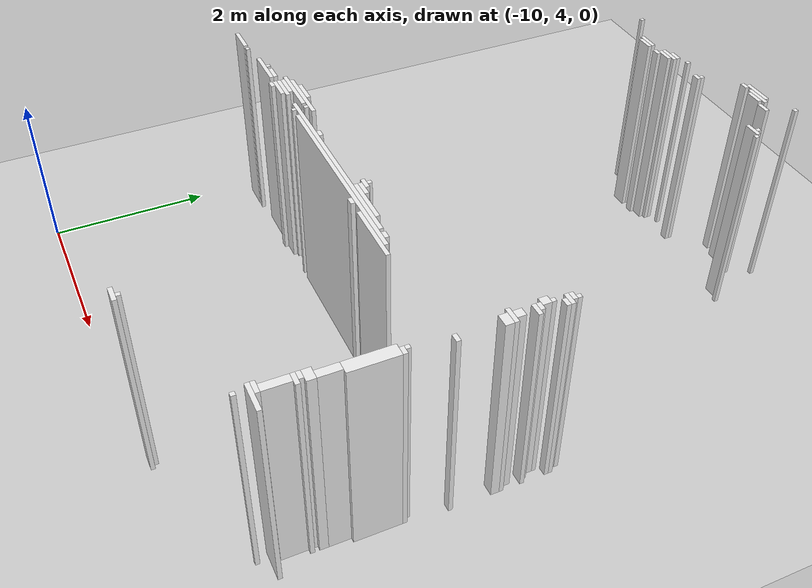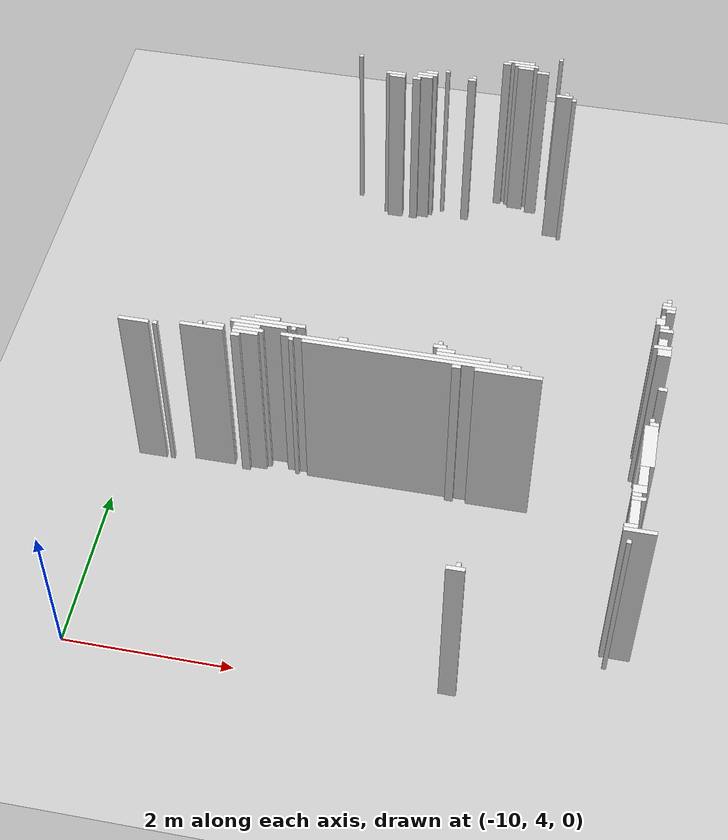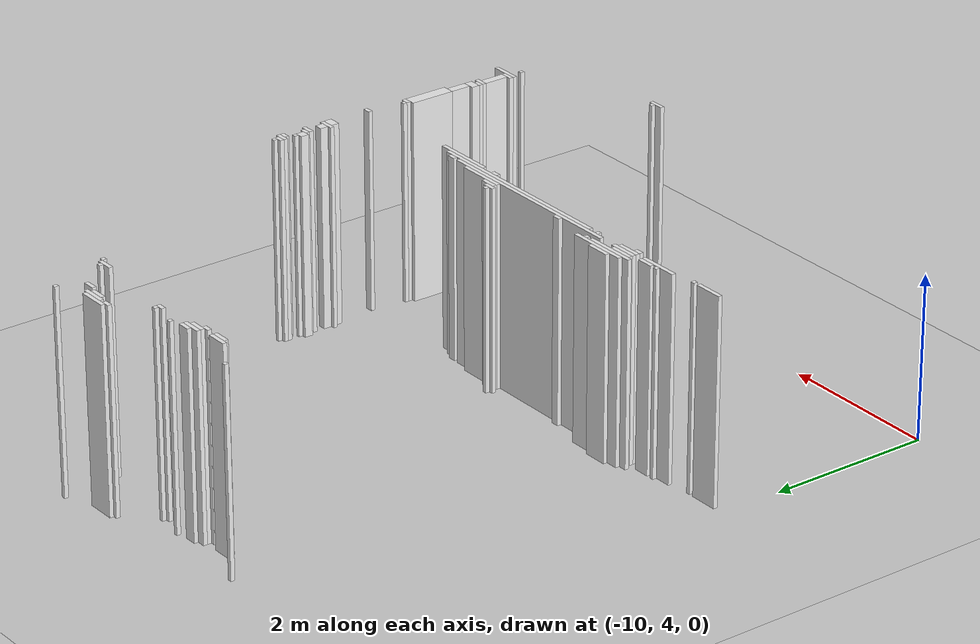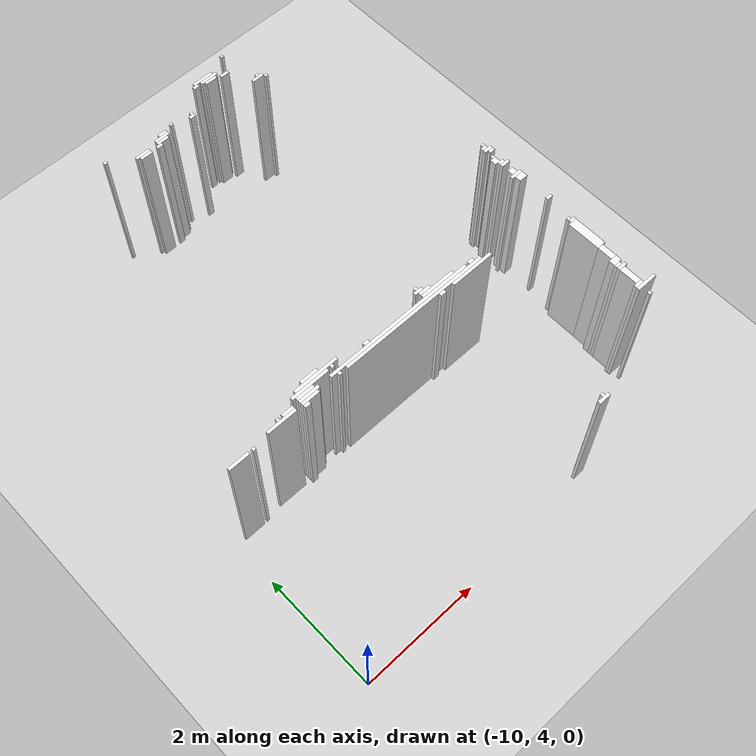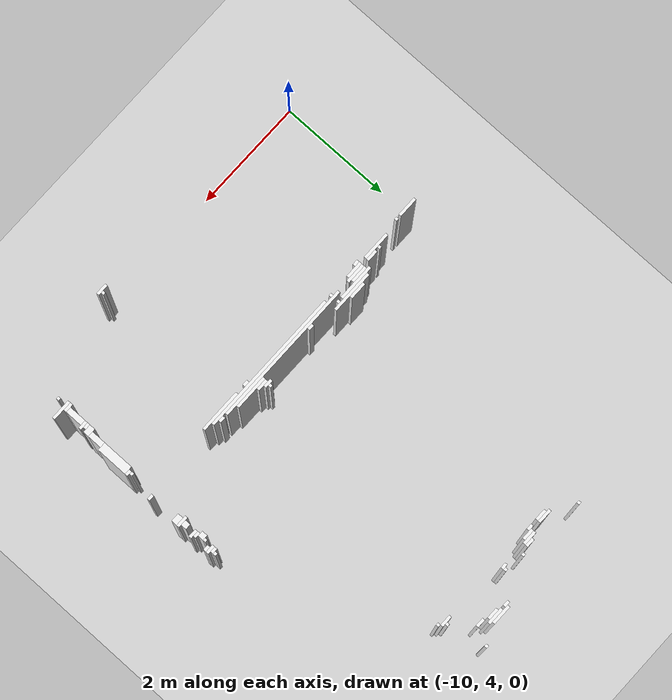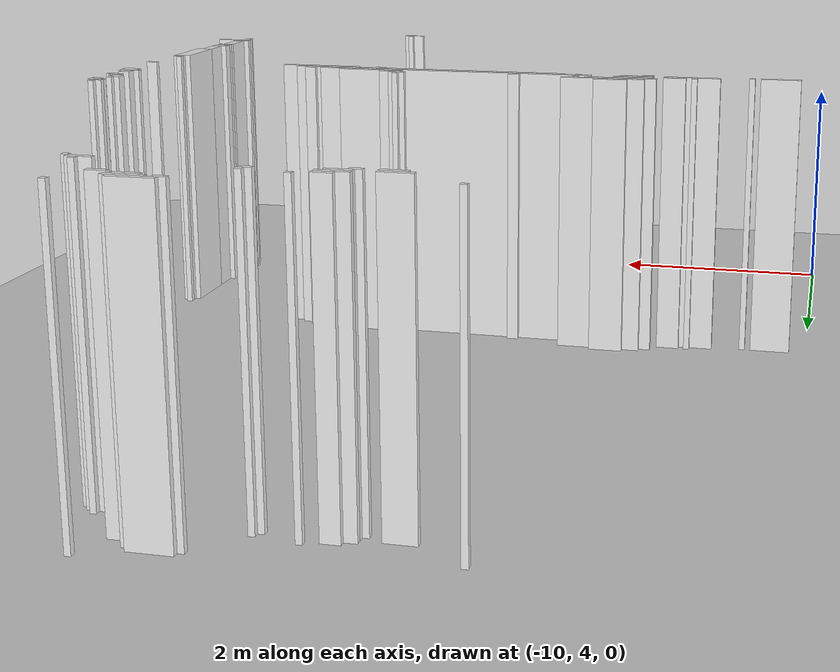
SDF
<sdf version="1.7">
 <world name="occupancy_map_world">
  <model name="ground_plane">
   <static>true</static>
   <link name="link">
    <collision name="collision">
     <geometry><plane><normal>0 0 1</normal><size>25.380000000000003 18.84</size></plane></geometry>
    </collision>
    <visual name="visual">
     <geometry><plane><normal>0 0 1</normal><size>25.380000000000003 18.84</size></plane></geometry>
     <material>
      <script><uri>file://media/materials/scripts/gazebo.material</uri><name>Gazebo/Grey</name></script>
     </material>
    </visual>
   </link>
  </model>
  <model name="wall_0">
   <static>true</static>
   <pose>-5.479000000000001 12.102999999999998 1.25 0 0 0.0</pose>
   <link name="link">
    <collision name="collision"><geometry><box><size>0.05 0.05 2.5</size></box></geometry></collision>
    <visual name="visual">
     <geometry><box><size>0.05 0.05 2.5</size></box></geometry>
     <material>
      <script><uri>file://media/materials/scripts/gazebo.material</uri><name>Gazebo/White</name></script>
     </material>
    </visual>
   </link>
  </model>
  <model name="wall_3">
   <static>true</static>
   <pose>-5.979000000000001 11.953 1.25 0 0 0.0</pose>
   <link name="link">
    <collision name="collision">
     <geometry><box><size>0.35000000000000003 0.05 2.5</size></box></geometry>
    </collision>
    <visual name="visual">
     <geometry><box><size>0.35000000000000003 0.05 2.5</size></box></geometry>
     <material>
      <script><uri>file://media/materials/scripts/gazebo.material</uri><name>Gazebo/White</name></script>
     </material>
    </visual>
   </link>
  </model>
  <model name="wall_4">
   <static>true</static>
   <pose>-6.154 11.902999999999999 1.25 0 0 0.0</pose>
   <link name="link">
    <collision name="collision"><geometry><box><size>0.1 0.05 2.5</size></box></geometry></collision>
    <visual name="visual">
     <geometry><box><size>0.1 0.05 2.5</size></box></geometry>
     <material>
      <script><uri>file://media/materials/scripts/gazebo.material</uri><name>Gazebo/White</name></script>
     </material>
    </visual>
   </link>
  </model>
  <model name="wall_5">
   <static>true</static>
   <pose>-5.904 11.902999999999999 1.25 0 0 0.0</pose>
   <link name="link">
    <collision name="collision">
     <geometry><box><size>0.30000000000000004 0.05 2.5</size></box></geometry>
    </collision>
    <visual name="visual">
     <geometry><box><size>0.30000000000000004 0.05 2.5</size></box></geometry>
     <material>
      <script><uri>file://media/materials/scripts/gazebo.material</uri><name>Gazebo/White</name></script>
     </material>
    </visual>
   </link>
  </model>
  <model name="wall_6">
   <static>true</static>
   <pose>-5.904 11.852999999999998 1.25 0 0 0.0</pose>
   <link name="link">
    <collision name="collision"><geometry><box><size>0.2 0.05 2.5</size></box></geometry></collision>
    <visual name="visual">
     <geometry><box><size>0.2 0.05 2.5</size></box></geometry>
     <material>
      <script><uri>file://media/materials/scripts/gazebo.material</uri><name>Gazebo/White</name></script>
     </material>
    </visual>
   </link>
  </model>
  <model name="wall_7">
   <static>true</static>
   <pose>-5.679 11.803 1.25 0 0 0.0</pose>
   <link name="link">
    <collision name="collision">
     <geometry><box><size>0.15000000000000002 0.05 2.5</size></box></geometry>
    </collision>
    <visual name="visual">
     <geometry><box><size>0.15000000000000002 0.05 2.5</size></box></geometry>
     <material>
      <script><uri>file://media/materials/scripts/gazebo.material</uri><name>Gazebo/White</name></script>
     </material>
    </visual>
   </link>
  </model>
  <model name="wall_8">
   <static>true</static>
   <pose>-8.029 11.703 1.25 0 0 0.0</pose>
   <link name="link">
    <collision name="collision"><geometry><box><size>0.05 0.05 2.5</size></box></geometry></collision>
    <visual name="visual">
     <geometry><box><size>0.05 0.05 2.5</size></box></geometry>
     <material>
      <script><uri>file://media/materials/scripts/gazebo.material</uri><name>Gazebo/White</name></script>
     </material>
    </visual>
   </link>
  </model>
  <model name="wall_9">
   <static>true</static>
   <pose>-6.879000000000001 11.603000000000002 1.25 0 0 0.0</pose>
   <link name="link">
    <collision name="collision"><geometry><box><size>0.05 0.05 2.5</size></box></geometry></collision>
    <visual name="visual">
     <geometry><box><size>0.05 0.05 2.5</size></box></geometry>
     <material>
      <script><uri>file://media/materials/scripts/gazebo.material</uri><name>Gazebo/White</name></script>
     </material>
    </visual>
   </link>
  </model>
  <model name="wall_10">
   <static>true</static>
   <pose>-7.079000000000001 11.553 1.25 0 0 0.0</pose>
   <link name="link">
    <collision name="collision">
     <geometry><box><size>0.15000000000000002 0.05 2.5</size></box></geometry>
    </collision>
    <visual name="visual">
     <geometry><box><size>0.15000000000000002 0.05 2.5</size></box></geometry>
     <material>
      <script><uri>file://media/materials/scripts/gazebo.material</uri><name>Gazebo/White</name></script>
     </material>
    </visual>
   </link>
  </model>
  <model name="wall_11">
   <static>true</static>
   <pose>-6.529 11.553 1.25 0 0 0.0</pose>
   <link name="link">
    <collision name="collision"><geometry><box><size>0.05 0.05 2.5</size></box></geometry></collision>
    <visual name="visual">
     <geometry><box><size>0.05 0.05 2.5</size></box></geometry>
     <material>
      <script><uri>file://media/materials/scripts/gazebo.material</uri><name>Gazebo/White</name></script>
     </material>
    </visual>
   </link>
  </model>
  <model name="wall_12">
   <static>true</static>
   <pose>-7.129000000000001 11.503 1.25 0 0 0.0</pose>
   <link name="link">
    <collision name="collision"><geometry><box><size>0.25 0.05 2.5</size></box></geometry></collision>
    <visual name="visual">
     <geometry><box><size>0.25 0.05 2.5</size></box></geometry>
     <material>
      <script><uri>file://media/materials/scripts/gazebo.material</uri><name>Gazebo/White</name></script>
     </material>
    </visual>
   </link>
  </model>
  <model name="wall_13">
   <static>true</static>
   <pose>-6.554 11.503 1.25 0 0 0.0</pose>
   <link name="link">
    <collision name="collision"><geometry><box><size>0.1 0.05 2.5</size></box></geometry></collision>
    <visual name="visual">
     <geometry><box><size>0.1 0.05 2.5</size></box></geometry>
     <material>
      <script><uri>file://media/materials/scripts/gazebo.material</uri><name>Gazebo/White</name></script>
     </material>
    </visual>
   </link>
  </model>
  <model name="wall_14">
   <static>true</static>
   <pose>-7.529 11.453 1.25 0 0 0.0</pose>
   <link name="link">
    <collision name="collision"><geometry><box><size>0.25 0.05 2.5</size></box></geometry></collision>
    <visual name="visual">
     <geometry><box><size>0.25 0.05 2.5</size></box></geometry>
     <material>
      <script><uri>file://media/materials/scripts/gazebo.material</uri><name>Gazebo/White</name></script>
     </material>
    </visual>
   </link>
  </model>
  <model name="wall_15">
   <static>true</static>
   <pose>-7.154 11.453 1.25 0 0 0.0</pose>
   <link name="link">
    <collision name="collision"><geometry><box><size>0.2 0.05 2.5</size></box></geometry></collision>
    <visual name="visual">
     <geometry><box><size>0.2 0.05 2.5</size></box></geometry>
     <material>
      <script><uri>file://media/materials/scripts/gazebo.material</uri><name>Gazebo/White</name></script>
     </material>
    </visual>
   </link>
  </model>
  <model name="wall_17">
   <static>true</static>
   <pose>-5.329000000000001 11.453 1.25 0 0 0.0</pose>
   <link name="link">
    <collision name="collision"><geometry><box><size>0.05 0.05 2.5</size></box></geometry></collision>
    <visual name="visual">
     <geometry><box><size>0.05 0.05 2.5</size></box></geometry>
     <material>
      <script><uri>file://media/materials/scripts/gazebo.material</uri><name>Gazebo/White</name></script>
     </material>
    </visual>
   </link>
  </model>
  <model name="wall_18">
   <static>true</static>
   <pose>-7.504000000000001 11.402999999999999 1.25 0 0 0.0</pose>
   <link name="link">
    <collision name="collision"><geometry><box><size>0.2 0.05 2.5</size></box></geometry></collision>
    <visual name="visual">
     <geometry><box><size>0.2 0.05 2.5</size></box></geometry>
     <material>
      <script><uri>file://media/materials/scripts/gazebo.material</uri><name>Gazebo/White</name></script>
     </material>
    </visual>
   </link>
  </model>
  <model name="wall_19">
   <static>true</static>
   <pose>-7.254000000000001 11.402999999999999 1.25 0 0 0.0</pose>
   <link name="link">
    <collision name="collision"><geometry><box><size>0.1 0.05 2.5</size></box></geometry></collision>
    <visual name="visual">
     <geometry><box><size>0.1 0.05 2.5</size></box></geometry>
     <material>
      <script><uri>file://media/materials/scripts/gazebo.material</uri><name>Gazebo/White</name></script>
     </material>
    </visual>
   </link>
  </model>
  <model name="wall_20">
   <static>true</static>
   <pose>-5.354000000000001 11.402999999999999 1.25 0 0 0.0</pose>
   <link name="link">
    <collision name="collision"><geometry><box><size>0.2 0.05 2.5</size></box></geometry></collision>
    <visual name="visual">
     <geometry><box><size>0.2 0.05 2.5</size></box></geometry>
     <material>
      <script><uri>file://media/materials/scripts/gazebo.material</uri><name>Gazebo/White</name></script>
     </material>
    </visual>
   </link>
  </model>
  <model name="wall_21">
   <static>true</static>
   <pose>-5.229000000000001 11.353000000000002 1.25 0 0 0.0</pose>
   <link name="link">
    <collision name="collision"><geometry><box><size>0.05 0.05 2.5</size></box></geometry></collision>
    <visual name="visual">
     <geometry><box><size>0.05 0.05 2.5</size></box></geometry>
     <material>
      <script><uri>file://media/materials/scripts/gazebo.material</uri><name>Gazebo/White</name></script>
     </material>
    </visual>
   </link>
  </model>
  <model name="wall_22">
   <static>true</static>
   <pose>-3.779 8.152999999999999 1.25 0 0 0.0</pose>
   <link name="link">
    <collision name="collision"><geometry><box><size>0.05 0.05 2.5</size></box></geometry></collision>
    <visual name="visual">
     <geometry><box><size>0.05 0.05 2.5</size></box></geometry>
     <material>
      <script><uri>file://media/materials/scripts/gazebo.material</uri><name>Gazebo/White</name></script>
     </material>
    </visual>
   </link>
  </model>
  <model name="wall_24">
   <static>true</static>
   <pose>-3.8040000000000003 8.103000000000002 1.25 0 0 0.0</pose>
   <link name="link">
    <collision name="collision"><geometry><box><size>0.1 0.05 2.5</size></box></geometry></collision>
    <visual name="visual">
     <geometry><box><size>0.1 0.05 2.5</size></box></geometry>
     <material>
      <script><uri>file://media/materials/scripts/gazebo.material</uri><name>Gazebo/White</name></script>
     </material>
    </visual>
   </link>
  </model>
  <model name="wall_25">
   <static>true</static>
   <pose>-3.8040000000000003 7.753000000000001 1.25 0 0 0.0</pose>
   <link name="link">
    <collision name="collision"><geometry><box><size>0.1 0.05 2.5</size></box></geometry></collision>
    <visual name="visual">
     <geometry><box><size>0.1 0.05 2.5</size></box></geometry>
     <material>
      <script><uri>file://media/materials/scripts/gazebo.material</uri><name>Gazebo/White</name></script>
     </material>
    </visual>
   </link>
  </model>
  <model name="wall_26">
   <static>true</static>
   <pose>-3.8040000000000003 7.528 1.25 0 0 0.0</pose>
   <link name="link">
    <collision name="collision"><geometry><box><size>0.1 0.1 2.5</size></box></geometry></collision>
    <visual name="visual">
     <geometry><box><size>0.1 0.1 2.5</size></box></geometry>
     <material>
      <script><uri>file://media/materials/scripts/gazebo.material</uri><name>Gazebo/White</name></script>
     </material>
    </visual>
   </link>
  </model>
  <model name="wall_27">
   <static>true</static>
   <pose>-3.8040000000000003 6.353000000000001 1.25 0 0 0.0</pose>
   <link name="link">
    <collision name="collision"><geometry><box><size>0.1 0.05 2.5</size></box></geometry></collision>
    <visual name="visual">
     <geometry><box><size>0.1 0.05 2.5</size></box></geometry>
     <material>
      <script><uri>file://media/materials/scripts/gazebo.material</uri><name>Gazebo/White</name></script>
     </material>
    </visual>
   </link>
  </model>
  <model name="wall_30">
   <static>true</static>
   <pose>-3.779 8.053 1.25 0 0 0.0</pose>
   <link name="link">
    <collision name="collision">
     <geometry><box><size>0.15000000000000002 0.05 2.5</size></box></geometry>
    </collision>
    <visual name="visual">
     <geometry><box><size>0.15000000000000002 0.05 2.5</size></box></geometry>
     <material>
      <script><uri>file://media/materials/scripts/gazebo.material</uri><name>Gazebo/White</name></script>
     </material>
    </visual>
   </link>
  </model>
  <model name="wall_31">
   <static>true</static>
   <pose>-3.779 7.703 1.25 0 0 0.0</pose>
   <link name="link">
    <collision name="collision">
     <geometry><box><size>0.15000000000000002 0.05 2.5</size></box></geometry>
    </collision>
    <visual name="visual">
     <geometry><box><size>0.15000000000000002 0.05 2.5</size></box></geometry>
     <material>
      <script><uri>file://media/materials/scripts/gazebo.material</uri><name>Gazebo/White</name></script>
     </material>
    </visual>
   </link>
  </model>
  <model name="wall_32">
   <static>true</static>
   <pose>-3.779 7.378000000000001 1.25 0 0 0.0</pose>
   <link name="link">
    <collision name="collision">
     <geometry><box><size>0.15000000000000002 0.1 2.5</size></box></geometry>
    </collision>
    <visual name="visual">
     <geometry><box><size>0.15000000000000002 0.1 2.5</size></box></geometry>
     <material>
      <script><uri>file://media/materials/scripts/gazebo.material</uri><name>Gazebo/White</name></script>
     </material>
    </visual>
   </link>
  </model>
  <model name="wall_34">
   <static>true</static>
   <pose>-3.7540000000000013 8.003 1.25 0 0 0.0</pose>
   <link name="link">
    <collision name="collision"><geometry><box><size>0.1 0.05 2.5</size></box></geometry></collision>
    <visual name="visual">
     <geometry><box><size>0.1 0.05 2.5</size></box></geometry>
     <material>
      <script><uri>file://media/materials/scripts/gazebo.material</uri><name>Gazebo/White</name></script>
     </material>
    </visual>
   </link>
  </model>
  <model name="wall_35">
   <static>true</static>
   <pose>-3.7540000000000013 6.853000000000001 1.25 0 0 0.0</pose>
   <link name="link">
    <collision name="collision"><geometry><box><size>0.1 0.05 2.5</size></box></geometry></collision>
    <visual name="visual">
     <geometry><box><size>0.1 0.05 2.5</size></box></geometry>
     <material>
      <script><uri>file://media/materials/scripts/gazebo.material</uri><name>Gazebo/White</name></script>
     </material>
    </visual>
   </link>
  </model>
  <model name="wall_40">
   <static>true</static>
   <pose>-3.8290000000000006 7.903 1.25 0 0 0.0</pose>
   <link name="link">
    <collision name="collision"><geometry><box><size>0.05 0.05 2.5</size></box></geometry></collision>
    <visual name="visual">
     <geometry><box><size>0.05 0.05 2.5</size></box></geometry>
     <material>
      <script><uri>file://media/materials/scripts/gazebo.material</uri><name>Gazebo/White</name></script>
     </material>
    </visual>
   </link>
  </model>
  <model name="wall_41">
   <static>true</static>
   <pose>-3.8290000000000006 6.403 1.25 0 0 0.0</pose>
   <link name="link">
    <collision name="collision"><geometry><box><size>0.05 0.05 2.5</size></box></geometry></collision>
    <visual name="visual">
     <geometry><box><size>0.05 0.05 2.5</size></box></geometry>
     <material>
      <script><uri>file://media/materials/scripts/gazebo.material</uri><name>Gazebo/White</name></script>
     </material>
    </visual>
   </link>
  </model>
  <model name="wall_42">
   <static>true</static>
   <pose>-3.854000000000001 7.828 1.25 0 0 0.0</pose>
   <link name="link">
    <collision name="collision"><geometry><box><size>0.1 0.1 2.5</size></box></geometry></collision>
    <visual name="visual">
     <geometry><box><size>0.1 0.1 2.5</size></box></geometry>
     <material>
      <script><uri>file://media/materials/scripts/gazebo.material</uri><name>Gazebo/White</name></script>
     </material>
    </visual>
   </link>
  </model>
  <model name="wall_43">
   <static>true</static>
   <pose>-3.854000000000001 5.653 1.25 0 0 0.0</pose>
   <link name="link">
    <collision name="collision"><geometry><box><size>0.1 0.25 2.5</size></box></geometry></collision>
    <visual name="visual">
     <geometry><box><size>0.1 0.25 2.5</size></box></geometry>
     <material>
      <script><uri>file://media/materials/scripts/gazebo.material</uri><name>Gazebo/White</name></script>
     </material>
    </visual>
   </link>
  </model>
  <model name="wall_60">
   <static>true</static>
   <pose>-3.8040000000000003 7.453 1.25 0 0 0.0</pose>
   <link name="link">
    <collision name="collision"><geometry><box><size>0.2 0.05 2.5</size></box></geometry></collision>
    <visual name="visual">
     <geometry><box><size>0.2 0.05 2.5</size></box></geometry>
     <material>
      <script><uri>file://media/materials/scripts/gazebo.material</uri><name>Gazebo/White</name></script>
     </material>
    </visual>
   </link>
  </model>
  <model name="wall_71">
   <static>true</static>
   <pose>-8.204 7.053 1.25 0 0 0.0</pose>
   <link name="link">
    <collision name="collision">
     <geometry><box><size>0.30000000000000004 0.05 2.5</size></box></geometry>
    </collision>
    <visual name="visual">
     <geometry><box><size>0.30000000000000004 0.05 2.5</size></box></geometry>
     <material>
      <script><uri>file://media/materials/scripts/gazebo.material</uri><name>Gazebo/White</name></script>
     </material>
    </visual>
   </link>
  </model>
  <model name="wall_72">
   <static>true</static>
   <pose>-6.229000000000001 7.053 1.25 0 0 0.0</pose>
   <link name="link">
    <collision name="collision"><geometry><box><size>0.05 0.05 2.5</size></box></geometry></collision>
    <visual name="visual">
     <geometry><box><size>0.05 0.05 2.5</size></box></geometry>
     <material>
      <script><uri>file://media/materials/scripts/gazebo.material</uri><name>Gazebo/White</name></script>
     </material>
    </visual>
   </link>
  </model>
  <model name="wall_75">
   <static>true</static>
   <pose>-8.129000000000001 7.003000000000001 1.25 0 0 0.0</pose>
   <link name="link">
    <collision name="collision"><geometry><box><size>0.75 0.05 2.5</size></box></geometry></collision>
    <visual name="visual">
     <geometry><box><size>0.75 0.05 2.5</size></box></geometry>
     <material>
      <script><uri>file://media/materials/scripts/gazebo.material</uri><name>Gazebo/White</name></script>
     </material>
    </visual>
   </link>
  </model>
  <model name="wall_76">
   <static>true</static>
   <pose>-6.229000000000001 7.003000000000001 1.25 0 0 0.0</pose>
   <link name="link">
    <collision name="collision">
     <geometry><box><size>0.15000000000000002 0.05 2.5</size></box></geometry>
    </collision>
    <visual name="visual">
     <geometry><box><size>0.15000000000000002 0.05 2.5</size></box></geometry>
     <material>
      <script><uri>file://media/materials/scripts/gazebo.material</uri><name>Gazebo/White</name></script>
     </material>
    </visual>
   </link>
  </model>
  <model name="wall_80">
   <static>true</static>
   <pose>-8.279 6.953 1.25 0 0 0.0</pose>
   <link name="link">
    <collision name="collision"><geometry><box><size>0.65 0.05 2.5</size></box></geometry></collision>
    <visual name="visual">
     <geometry><box><size>0.65 0.05 2.5</size></box></geometry>
     <material>
      <script><uri>file://media/materials/scripts/gazebo.material</uri><name>Gazebo/White</name></script>
     </material>
    </visual>
   </link>
  </model>
  <model name="wall_81">
   <static>true</static>
   <pose>-7.879000000000001 6.953 1.25 0 0 0.0</pose>
   <link name="link">
    <collision name="collision"><geometry><box><size>0.05 0.05 2.5</size></box></geometry></collision>
    <visual name="visual">
     <geometry><box><size>0.05 0.05 2.5</size></box></geometry>
     <material>
      <script><uri>file://media/materials/scripts/gazebo.material</uri><name>Gazebo/White</name></script>
     </material>
    </visual>
   </link>
  </model>
  <model name="wall_82">
   <static>true</static>
   <pose>-7.879000000000001 6.803 1.25 0 0 0.0</pose>
   <link name="link">
    <collision name="collision"><geometry><box><size>0.05 0.05 2.5</size></box></geometry></collision>
    <visual name="visual">
     <geometry><box><size>0.05 0.05 2.5</size></box></geometry>
     <material>
      <script><uri>file://media/materials/scripts/gazebo.material</uri><name>Gazebo/White</name></script>
     </material>
    </visual>
   </link>
  </model>
  <model name="wall_83">
   <static>true</static>
   <pose>-6.154 6.953 1.25 0 0 0.0</pose>
   <link name="link">
    <collision name="collision"><geometry><box><size>0.2 0.05 2.5</size></box></geometry></collision>
    <visual name="visual">
     <geometry><box><size>0.2 0.05 2.5</size></box></geometry>
     <material>
      <script><uri>file://media/materials/scripts/gazebo.material</uri><name>Gazebo/White</name></script>
     </material>
    </visual>
   </link>
  </model>
  <model name="wall_85">
   <static>true</static>
   <pose>-8.404 6.903 1.25 0 0 0.0</pose>
   <link name="link">
    <collision name="collision">
     <geometry><box><size>0.30000000000000004 0.05 2.5</size></box></geometry>
    </collision>
    <visual name="visual">
     <geometry><box><size>0.30000000000000004 0.05 2.5</size></box></geometry>
     <material>
      <script><uri>file://media/materials/scripts/gazebo.material</uri><name>Gazebo/White</name></script>
     </material>
    </visual>
   </link>
  </model>
  <model name="wall_86">
   <static>true</static>
   <pose>-8.404 6.803 1.25 0 0 0.0</pose>
   <link name="link">
    <collision name="collision">
     <geometry><box><size>0.30000000000000004 0.05 2.5</size></box></geometry>
    </collision>
    <visual name="visual">
     <geometry><box><size>0.30000000000000004 0.05 2.5</size></box></geometry>
     <material>
      <script><uri>file://media/materials/scripts/gazebo.material</uri><name>Gazebo/White</name></script>
     </material>
    </visual>
   </link>
  </model>
  <model name="wall_87">
   <static>true</static>
   <pose>-7.304 6.903 1.25 0 0 0.0</pose>
   <link name="link">
    <collision name="collision"><geometry><box><size>0.1 0.05 2.5</size></box></geometry></collision>
    <visual name="visual">
     <geometry><box><size>0.1 0.05 2.5</size></box></geometry>
     <material>
      <script><uri>file://media/materials/scripts/gazebo.material</uri><name>Gazebo/White</name></script>
     </material>
    </visual>
   </link>
  </model>
  <model name="wall_88">
   <static>true</static>
   <pose>-5.954000000000001 6.903 1.25 0 0 0.0</pose>
   <link name="link">
    <collision name="collision">
     <geometry><box><size>0.6000000000000001 0.05 2.5</size></box></geometry>
    </collision>
    <visual name="visual">
     <geometry><box><size>0.6000000000000001 0.05 2.5</size></box></geometry>
     <material>
      <script><uri>file://media/materials/scripts/gazebo.material</uri><name>Gazebo/White</name></script>
     </material>
    </visual>
   </link>
  </model>
  <model name="wall_90">
   <static>true</static>
   <pose>-8.929 6.853000000000001 1.25 0 0 0.0</pose>
   <link name="link">
    <collision name="collision"><geometry><box><size>0.05 0.05 2.5</size></box></geometry></collision>
    <visual name="visual">
     <geometry><box><size>0.05 0.05 2.5</size></box></geometry>
     <material>
      <script><uri>file://media/materials/scripts/gazebo.material</uri><name>Gazebo/White</name></script>
     </material>
    </visual>
   </link>
  </model>
  <model name="wall_91">
   <static>true</static>
   <pose>-8.754000000000001 6.853000000000001 1.25 0 0 0.0</pose>
   <link name="link">
    <collision name="collision"><geometry><box><size>0.2 0.05 2.5</size></box></geometry></collision>
    <visual name="visual">
     <geometry><box><size>0.2 0.05 2.5</size></box></geometry>
     <material>
      <script><uri>file://media/materials/scripts/gazebo.material</uri><name>Gazebo/White</name></script>
     </material>
    </visual>
   </link>
  </model>
  <model name="wall_92">
   <static>true</static>
   <pose>-8.379000000000001 6.853000000000001 1.25 0 0 0.0</pose>
   <link name="link">
    <collision name="collision">
     <geometry><box><size>0.35000000000000003 0.05 2.5</size></box></geometry>
    </collision>
    <visual name="visual">
     <geometry><box><size>0.35000000000000003 0.05 2.5</size></box></geometry>
     <material>
      <script><uri>file://media/materials/scripts/gazebo.material</uri><name>Gazebo/White</name></script>
     </material>
    </visual>
   </link>
  </model>
  <model name="wall_93">
   <static>true</static>
   <pose>-6.729000000000001 6.853000000000001 1.25 0 0 0.0</pose>
   <link name="link">
    <collision name="collision">
     <geometry><box><size>2.5500000000000003 0.05 2.5</size></box></geometry>
    </collision>
    <visual name="visual">
     <geometry><box><size>2.5500000000000003 0.05 2.5</size></box></geometry>
     <material>
      <script><uri>file://media/materials/scripts/gazebo.material</uri><name>Gazebo/White</name></script>
     </material>
    </visual>
   </link>
  </model>
  <model name="wall_94">
   <static>true</static>
   <pose>-5.354000000000001 6.853000000000001 1.25 0 0 0.0</pose>
   <link name="link">
    <collision name="collision"><geometry><box><size>0.1 0.05 2.5</size></box></geometry></collision>
    <visual name="visual">
     <geometry><box><size>0.1 0.05 2.5</size></box></geometry>
     <material>
      <script><uri>file://media/materials/scripts/gazebo.material</uri><name>Gazebo/White</name></script>
     </material>
    </visual>
   </link>
  </model>
  <model name="wall_96">
   <static>true</static>
   <pose>-8.904000000000002 6.803 1.25 0 0 0.0</pose>
   <link name="link">
    <collision name="collision"><geometry><box><size>0.5 0.05 2.5</size></box></geometry></collision>
    <visual name="visual">
     <geometry><box><size>0.5 0.05 2.5</size></box></geometry>
     <material>
      <script><uri>file://media/materials/scripts/gazebo.material</uri><name>Gazebo/White</name></script>
     </material>
    </visual>
   </link>
  </model>
  <model name="wall_97">
   <static>true</static>
   <pose>-6.479000000000001 6.803 1.25 0 0 0.0</pose>
   <link name="link">
    <collision name="collision">
     <geometry><box><size>2.5500000000000003 0.05 2.5</size></box></geometry>
    </collision>
    <visual name="visual">
     <geometry><box><size>2.5500000000000003 0.05 2.5</size></box></geometry>
     <material>
      <script><uri>file://media/materials/scripts/gazebo.material</uri><name>Gazebo/White</name></script>
     </material>
    </visual>
   </link>
  </model>
  <model name="wall_98">
   <static>true</static>
   <pose>-9.679 6.753000000000001 1.25 0 0 0.0</pose>
   <link name="link">
    <collision name="collision">
     <geometry><box><size>0.35000000000000003 0.05 2.5</size></box></geometry>
    </collision>
    <visual name="visual">
     <geometry><box><size>0.35000000000000003 0.05 2.5</size></box></geometry>
     <material>
      <script><uri>file://media/materials/scripts/gazebo.material</uri><name>Gazebo/White</name></script>
     </material>
    </visual>
   </link>
  </model>
  <model name="wall_99">
   <static>true</static>
   <pose>-9.429 6.753000000000001 1.25 0 0 0.0</pose>
   <link name="link">
    <collision name="collision"><geometry><box><size>0.05 0.05 2.5</size></box></geometry></collision>
    <visual name="visual">
     <geometry><box><size>0.05 0.05 2.5</size></box></geometry>
     <material>
      <script><uri>file://media/materials/scripts/gazebo.material</uri><name>Gazebo/White</name></script>
     </material>
    </visual>
   </link>
  </model>
  <model name="wall_100">
   <static>true</static>
   <pose>-8.504000000000001 6.753000000000001 1.25 0 0 0.0</pose>
   <link name="link">
    <collision name="collision"><geometry><box><size>0.1 0.05 2.5</size></box></geometry></collision>
    <visual name="visual">
     <geometry><box><size>0.1 0.05 2.5</size></box></geometry>
     <material>
      <script><uri>file://media/materials/scripts/gazebo.material</uri><name>Gazebo/White</name></script>
     </material>
    </visual>
   </link>
  </model>
  <model name="wall_101">
   <static>true</static>
   <pose>-6.004000000000001 6.753000000000001 1.25 0 0 0.0</pose>
   <link name="link">
    <collision name="collision"><geometry><box><size>0.1 0.05 2.5</size></box></geometry></collision>
    <visual name="visual">
     <geometry><box><size>0.1 0.05 2.5</size></box></geometry>
     <material>
      <script><uri>file://media/materials/scripts/gazebo.material</uri><name>Gazebo/White</name></script>
     </material>
    </visual>
   </link>
  </model>
  <model name="wall_102">
   <static>true</static>
   <pose>-5.429 6.753000000000001 1.25 0 0 0.0</pose>
   <link name="link">
    <collision name="collision"><geometry><box><size>0.75 0.05 2.5</size></box></geometry></collision>
    <visual name="visual">
     <geometry><box><size>0.75 0.05 2.5</size></box></geometry>
     <material>
      <script><uri>file://media/materials/scripts/gazebo.material</uri><name>Gazebo/White</name></script>
     </material>
    </visual>
   </link>
  </model>
  <model name="wall_122">
   <static>true</static>
   <pose>-3.8290000000000006 6.053 1.25 0 0 0.0</pose>
   <link name="link">
    <collision name="collision">
     <geometry><box><size>0.15000000000000002 0.55 2.5</size></box></geometry>
    </collision>
    <visual name="visual">
     <geometry><box><size>0.15000000000000002 0.55 2.5</size></box></geometry>
     <material>
      <script><uri>file://media/materials/scripts/gazebo.material</uri><name>Gazebo/White</name></script>
     </material>
    </visual>
   </link>
  </model>
  <model name="wall_156">
   <static>true</static>
   <pose>-3.8790000000000013 5.478000000000001 1.25 0 0 0.0</pose>
   <link name="link">
    <collision name="collision">
     <geometry><box><size>0.15000000000000002 0.1 2.5</size></box></geometry>
    </collision>
    <visual name="visual">
     <geometry><box><size>0.15000000000000002 0.1 2.5</size></box></geometry>
     <material>
      <script><uri>file://media/materials/scripts/gazebo.material</uri><name>Gazebo/White</name></script>
     </material>
    </visual>
   </link>
  </model>
  <model name="wall_157">
   <static>true</static>
   <pose>-3.8790000000000013 5.353000000000001 1.25 0 0 0.0</pose>
   <link name="link">
    <collision name="collision">
     <geometry><box><size>0.15000000000000002 0.05 2.5</size></box></geometry>
    </collision>
    <visual name="visual">
     <geometry><box><size>0.15000000000000002 0.05 2.5</size></box></geometry>
     <material>
      <script><uri>file://media/materials/scripts/gazebo.material</uri><name>Gazebo/White</name></script>
     </material>
    </visual>
   </link>
  </model>
  <model name="wall_162">
   <static>true</static>
   <pose>-3.904 5.403 1.25 0 0 0.0</pose>
   <link name="link">
    <collision name="collision"><geometry><box><size>0.1 0.05 2.5</size></box></geometry></collision>
    <visual name="visual">
     <geometry><box><size>0.1 0.05 2.5</size></box></geometry>
     <material>
      <script><uri>file://media/materials/scripts/gazebo.material</uri><name>Gazebo/White</name></script>
     </material>
    </visual>
   </link>
  </model>
  <model name="wall_163">
   <static>true</static>
   <pose>-3.904 5.178 1.25 0 0 0.0</pose>
   <link name="link">
    <collision name="collision">
     <geometry><box><size>0.1 0.30000000000000004 2.5</size></box></geometry>
    </collision>
    <visual name="visual">
     <geometry><box><size>0.1 0.30000000000000004 2.5</size></box></geometry>
     <material>
      <script><uri>file://media/materials/scripts/gazebo.material</uri><name>Gazebo/White</name></script>
     </material>
    </visual>
   </link>
  </model>
  <model name="wall_176">
   <static>true</static>
   <pose>-3.9290000000000003 5.002999999999999 1.25 0 0 0.0</pose>
   <link name="link">
    <collision name="collision">
     <geometry><box><size>0.15000000000000002 0.05 2.5</size></box></geometry>
    </collision>
    <visual name="visual">
     <geometry><box><size>0.15000000000000002 0.05 2.5</size></box></geometry>
     <material>
      <script><uri>file://media/materials/scripts/gazebo.material</uri><name>Gazebo/White</name></script>
     </material>
    </visual>
   </link>
  </model>
  <model name="wall_180">
   <static>true</static>
   <pose>-3.8290000000000006 4.953 1.25 0 0 0.0</pose>
   <link name="link">
    <collision name="collision">
     <geometry><box><size>0.35000000000000003 0.05 2.5</size></box></geometry>
    </collision>
    <visual name="visual">
     <geometry><box><size>0.35000000000000003 0.05 2.5</size></box></geometry>
     <material>
      <script><uri>file://media/materials/scripts/gazebo.material</uri><name>Gazebo/White</name></script>
     </material>
    </visual>
   </link>
  </model>
  <model name="wall_189">
   <static>true</static>
   <pose>-3.9290000000000003 4.803 1.25 0 0 0.0</pose>
   <link name="link">
    <collision name="collision"><geometry><box><size>0.05 0.05 2.5</size></box></geometry></collision>
    <visual name="visual">
     <geometry><box><size>0.05 0.05 2.5</size></box></geometry>
     <material>
      <script><uri>file://media/materials/scripts/gazebo.material</uri><name>Gazebo/White</name></script>
     </material>
    </visual>
   </link>
  </model>
  <model name="wall_222">
   <static>true</static>
   <pose>-5.579000000000001 4.203 1.25 0 0 0.0</pose>
   <link name="link">
    <collision name="collision"><geometry><box><size>0.05 0.05 2.5</size></box></geometry></collision>
    <visual name="visual">
     <geometry><box><size>0.05 0.05 2.5</size></box></geometry>
     <material>
      <script><uri>file://media/materials/scripts/gazebo.material</uri><name>Gazebo/White</name></script>
     </material>
    </visual>
   </link>
  </model>
  <model name="wall_225">
   <static>true</static>
   <pose>-5.604000000000001 4.153 1.25 0 0 0.0</pose>
   <link name="link">
    <collision name="collision"><geometry><box><size>0.2 0.05 2.5</size></box></geometry></collision>
    <visual name="visual">
     <geometry><box><size>0.2 0.05 2.5</size></box></geometry>
     <material>
      <script><uri>file://media/materials/scripts/gazebo.material</uri><name>Gazebo/White</name></script>
     </material>
    </visual>
   </link>
  </model>
  <model name="wall_418">
   <static>true</static>
   <pose>-5.579000000000001 4.203 1.25 0 0 0.0</pose>
   <link name="link">
    <collision name="collision"><geometry><box><size>0.05 0.05 2.5</size></box></geometry></collision>
    <visual name="visual">
     <geometry><box><size>0.05 0.05 2.5</size></box></geometry>
     <material>
      <script><uri>file://media/materials/scripts/gazebo.material</uri><name>Gazebo/White</name></script>
     </material>
    </visual>
   </link>
  </model>
  <model name="wall_432">
   <static>true</static>
   <pose>-6.229000000000001 7.053 1.25 0 0 0.0</pose>
   <link name="link">
    <collision name="collision"><geometry><box><size>0.05 0.05 2.5</size></box></geometry></collision>
    <visual name="visual">
     <geometry><box><size>0.05 0.05 2.5</size></box></geometry>
     <material>
      <script><uri>file://media/materials/scripts/gazebo.material</uri><name>Gazebo/White</name></script>
     </material>
    </visual>
   </link>
  </model>
  <model name="wall_439">
   <static>true</static>
   <pose>-9.429 6.753000000000001 1.25 0 0 0.0</pose>
   <link name="link">
    <collision name="collision"><geometry><box><size>0.05 0.05 2.5</size></box></geometry></collision>
    <visual name="visual">
     <geometry><box><size>0.05 0.05 2.5</size></box></geometry>
     <material>
      <script><uri>file://media/materials/scripts/gazebo.material</uri><name>Gazebo/White</name></script>
     </material>
    </visual>
   </link>
  </model>
  <model name="wall_441">
   <static>true</static>
   <pose>-8.929 6.853000000000001 1.25 0 0 0.0</pose>
   <link name="link">
    <collision name="collision"><geometry><box><size>0.05 0.05 2.5</size></box></geometry></collision>
    <visual name="visual">
     <geometry><box><size>0.05 0.05 2.5</size></box></geometry>
     <material>
      <script><uri>file://media/materials/scripts/gazebo.material</uri><name>Gazebo/White</name></script>
     </material>
    </visual>
   </link>
  </model>
  <model name="wall_442">
   <static>true</static>
   <pose>-8.029 11.703 1.25 0 0 0.0</pose>
   <link name="link">
    <collision name="collision"><geometry><box><size>0.05 0.05 2.5</size></box></geometry></collision>
    <visual name="visual">
     <geometry><box><size>0.05 0.05 2.5</size></box></geometry>
     <material>
      <script><uri>file://media/materials/scripts/gazebo.material</uri><name>Gazebo/White</name></script>
     </material>
    </visual>
   </link>
  </model>
  <model name="wall_443">
   <static>true</static>
   <pose>-7.879000000000001 6.953 1.25 0 0 0.0</pose>
   <link name="link">
    <collision name="collision"><geometry><box><size>0.05 0.05 2.5</size></box></geometry></collision>
    <visual name="visual">
     <geometry><box><size>0.05 0.05 2.5</size></box></geometry>
     <material>
      <script><uri>file://media/materials/scripts/gazebo.material</uri><name>Gazebo/White</name></script>
     </material>
    </visual>
   </link>
  </model>
  <model name="wall_444">
   <static>true</static>
   <pose>-7.879000000000001 6.803 1.25 0 0 0.0</pose>
   <link name="link">
    <collision name="collision"><geometry><box><size>0.05 0.05 2.5</size></box></geometry></collision>
    <visual name="visual">
     <geometry><box><size>0.05 0.05 2.5</size></box></geometry>
     <material>
      <script><uri>file://media/materials/scripts/gazebo.material</uri><name>Gazebo/White</name></script>
     </material>
    </visual>
   </link>
  </model>
  <model name="wall_445">
   <static>true</static>
   <pose>-6.879000000000001 11.603000000000002 1.25 0 0 0.0</pose>
   <link name="link">
    <collision name="collision"><geometry><box><size>0.05 0.05 2.5</size></box></geometry></collision>
    <visual name="visual">
     <geometry><box><size>0.05 0.05 2.5</size></box></geometry>
     <material>
      <script><uri>file://media/materials/scripts/gazebo.material</uri><name>Gazebo/White</name></script>
     </material>
    </visual>
   </link>
  </model>
  <model name="wall_446">
   <static>true</static>
   <pose>-6.529 11.553 1.25 0 0 0.0</pose>
   <link name="link">
    <collision name="collision"><geometry><box><size>0.05 0.05 2.5</size></box></geometry></collision>
    <visual name="visual">
     <geometry><box><size>0.05 0.05 2.5</size></box></geometry>
     <material>
      <script><uri>file://media/materials/scripts/gazebo.material</uri><name>Gazebo/White</name></script>
     </material>
    </visual>
   </link>
  </model>
  <model name="wall_452">
   <static>true</static>
   <pose>-5.479000000000001 12.102999999999998 1.25 0 0 0.0</pose>
   <link name="link">
    <collision name="collision"><geometry><box><size>0.05 0.05 2.5</size></box></geometry></collision>
    <visual name="visual">
     <geometry><box><size>0.05 0.05 2.5</size></box></geometry>
     <material>
      <script><uri>file://media/materials/scripts/gazebo.material</uri><name>Gazebo/White</name></script>
     </material>
    </visual>
   </link>
  </model>
  <model name="wall_455">
   <static>true</static>
   <pose>-5.329000000000001 11.453 1.25 0 0 0.0</pose>
   <link name="link">
    <collision name="collision"><geometry><box><size>0.05 0.05 2.5</size></box></geometry></collision>
    <visual name="visual">
     <geometry><box><size>0.05 0.05 2.5</size></box></geometry>
     <material>
      <script><uri>file://media/materials/scripts/gazebo.material</uri><name>Gazebo/White</name></script>
     </material>
    </visual>
   </link>
  </model>
  <model name="wall_456">
   <static>true</static>
   <pose>-5.229000000000001 11.353000000000002 1.25 0 0 0.0</pose>
   <link name="link">
    <collision name="collision"><geometry><box><size>0.05 0.05 2.5</size></box></geometry></collision>
    <visual name="visual">
     <geometry><box><size>0.05 0.05 2.5</size></box></geometry>
     <material>
      <script><uri>file://media/materials/scripts/gazebo.material</uri><name>Gazebo/White</name></script>
     </material>
    </visual>
   </link>
  </model>
  <model name="wall_461">
   <static>true</static>
   <pose>-3.9290000000000003 4.803 1.25 0 0 0.0</pose>
   <link name="link">
    <collision name="collision"><geometry><box><size>0.05 0.05 2.5</size></box></geometry></collision>
    <visual name="visual">
     <geometry><box><size>0.05 0.05 2.5</size></box></geometry>
     <material>
      <script><uri>file://media/materials/scripts/gazebo.material</uri><name>Gazebo/White</name></script>
     </material>
    </visual>
   </link>
  </model>
  <model name="wall_463">
   <static>true</static>
   <pose>-3.8290000000000006 7.903 1.25 0 0 0.0</pose>
   <link name="link">
    <collision name="collision"><geometry><box><size>0.05 0.05 2.5</size></box></geometry></collision>
    <visual name="visual">
     <geometry><box><size>0.05 0.05 2.5</size></box></geometry>
     <material>
      <script><uri>file://media/materials/scripts/gazebo.material</uri><name>Gazebo/White</name></script>
     </material>
    </visual>
   </link>
  </model>
  <model name="wall_464">
   <static>true</static>
   <pose>-3.8290000000000006 6.403 1.25 0 0 0.0</pose>
   <link name="link">
    <collision name="collision"><geometry><box><size>0.05 0.05 2.5</size></box></geometry></collision>
    <visual name="visual">
     <geometry><box><size>0.05 0.05 2.5</size></box></geometry>
     <material>
      <script><uri>file://media/materials/scripts/gazebo.material</uri><name>Gazebo/White</name></script>
     </material>
    </visual>
   </link>
  </model>
  <model name="wall_465">
   <static>true</static>
   <pose>-3.779 8.152999999999999 1.25 0 0 0.0</pose>
   <link name="link">
    <collision name="collision"><geometry><box><size>0.05 0.05 2.5</size></box></geometry></collision>
    <visual name="visual">
     <geometry><box><size>0.05 0.05 2.5</size></box></geometry>
     <material>
      <script><uri>file://media/materials/scripts/gazebo.material</uri><name>Gazebo/White</name></script>
     </material>
    </visual>
   </link>
  </model>
 </world>
</sdf>
